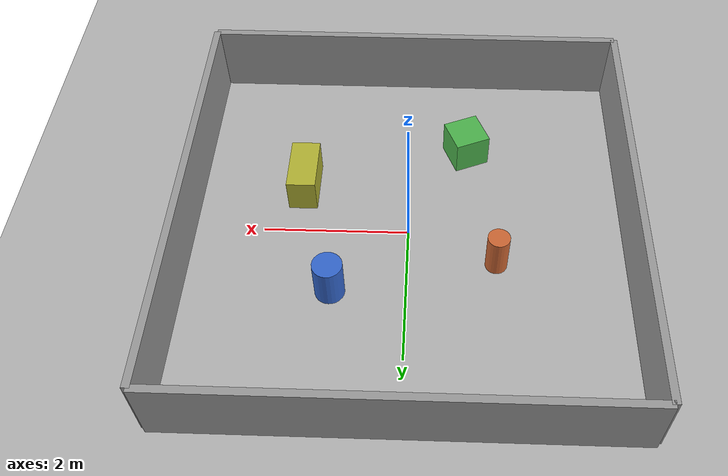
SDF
<?xml version="1.0"?>
<sdf version="1.10">
  <world name="obstacles">
    <physics name="1ms" type="ignored">
      <max_step_size>0.001</max_step_size>
      <real_time_factor>1.0</real_time_factor>
    </physics>

    <plugin filename="gz-sim-physics-system"           name="gz::sim::systems::Physics"/>
    <plugin filename="gz-sim-user-commands-system"     name="gz::sim::systems::UserCommands"/>
    <plugin filename="gz-sim-scene-broadcaster-system" name="gz::sim::systems::SceneBroadcaster"/>
    <plugin filename="gz-sim-sensors-system"           name="gz::sim::systems::Sensors">
      <render_engine>ogre2</render_engine>
    </plugin>
    <plugin filename="gz-sim-imu-system"               name="gz::sim::systems::Imu"/>

    <light type="directional" name="sun">
      <cast_shadows>true</cast_shadows>
      <pose>0 0 10 0 0 0</pose>
      <diffuse>0.8 0.8 0.8 1</diffuse>
      <specular>0.2 0.2 0.2 1</specular>
      <direction>-0.5 0.1 -0.9</direction>
    </light>

    <model name="ground_plane">
      <static>true</static>
      <link name="link">
        <collision name="collision">
          <geometry><plane><normal>0 0 1</normal><size>50 50</size></plane></geometry>
        </collision>
        <visual name="visual">
          <geometry><plane><normal>0 0 1</normal><size>50 50</size></plane></geometry>
          <material>
            <ambient>0.7 0.7 0.7 1</ambient>
            <diffuse>0.7 0.7 0.7 1</diffuse>
          </material>
        </visual>
      </link>
    </model>

    <!-- Four walls forming 6x6 m room -->
    <model name="wall_n">
      <static>true</static>
      <pose>0 3 0.5 0 0 0</pose>
      <link name="link">
        <collision name="c"><geometry><box><size>6 0.1 1</size></box></geometry></collision>
        <visual name="v"><geometry><box><size>6 0.1 1</size></box></geometry>
          <material><ambient>0.6 0.6 0.6 1</ambient><diffuse>0.6 0.6 0.6 1</diffuse></material></visual>
      </link>
    </model>
    <model name="wall_s">
      <static>true</static>
      <pose>0 -3 0.5 0 0 0</pose>
      <link name="link">
        <collision name="c"><geometry><box><size>6 0.1 1</size></box></geometry></collision>
        <visual name="v"><geometry><box><size>6 0.1 1</size></box></geometry>
          <material><ambient>0.6 0.6 0.6 1</ambient><diffuse>0.6 0.6 0.6 1</diffuse></material></visual>
      </link>
    </model>
    <model name="wall_e">
      <static>true</static>
      <pose>3 0 0.5 0 0 0</pose>
      <link name="link">
        <collision name="c"><geometry><box><size>0.1 6 1</size></box></geometry></collision>
        <visual name="v"><geometry><box><size>0.1 6 1</size></box></geometry>
          <material><ambient>0.6 0.6 0.6 1</ambient><diffuse>0.6 0.6 0.6 1</diffuse></material></visual>
      </link>
    </model>
    <model name="wall_w">
      <static>true</static>
      <pose>-3 0 0.5 0 0 0</pose>
      <link name="link">
        <collision name="c"><geometry><box><size>0.1 6 1</size></box></geometry></collision>
        <visual name="v"><geometry><box><size>0.1 6 1</size></box></geometry>
          <material><ambient>0.6 0.6 0.6 1</ambient><diffuse>0.6 0.6 0.6 1</diffuse></material></visual>
      </link>
    </model>

    <!-- Pillars -->
    <model name="pillar_1">
      <static>true</static>
      <pose>1.0 1.0 0.3 0 0 0</pose>
      <link name="link">
        <collision name="c"><geometry><cylinder><radius>0.2</radius><length>0.6</length></cylinder></geometry></collision>
        <visual name="v"><geometry><cylinder><radius>0.2</radius><length>0.6</length></cylinder></geometry>
          <material><ambient>0.2 0.4 0.8 1</ambient><diffuse>0.2 0.4 0.8 1</diffuse></material></visual>
      </link>
    </model>
    <model name="pillar_2">
      <static>true</static>
      <pose>-1.2 0.5 0.3 0 0 0</pose>
      <link name="link">
        <collision name="c"><geometry><cylinder><radius>0.15</radius><length>0.6</length></cylinder></geometry></collision>
        <visual name="v"><geometry><cylinder><radius>0.15</radius><length>0.6</length></cylinder></geometry>
          <material><ambient>0.8 0.4 0.2 1</ambient><diffuse>0.8 0.4 0.2 1</diffuse></material></visual>
      </link>
    </model>
    <model name="box_1">
      <static>true</static>
      <pose>-0.8 -1.5 0.25 0 0 0.4</pose>
      <link name="link">
        <collision name="c"><geometry><box><size>0.5 0.5 0.5</size></box></geometry></collision>
        <visual name="v"><geometry><box><size>0.5 0.5 0.5</size></box></geometry>
          <material><ambient>0.3 0.7 0.3 1</ambient><diffuse>0.3 0.7 0.3 1</diffuse></material></visual>
      </link>
    </model>
    <model name="box_2">
      <static>true</static>
      <pose>1.5 -0.8 0.25 0 0 0</pose>
      <link name="link">
        <collision name="c"><geometry><box><size>0.4 0.8 0.5</size></box></geometry></collision>
        <visual name="v"><geometry><box><size>0.4 0.8 0.5</size></box></geometry>
          <material><ambient>0.7 0.7 0.2 1</ambient><diffuse>0.7 0.7 0.2 1</diffuse></material></visual>
      </link>
    </model>
  </world>
</sdf>
